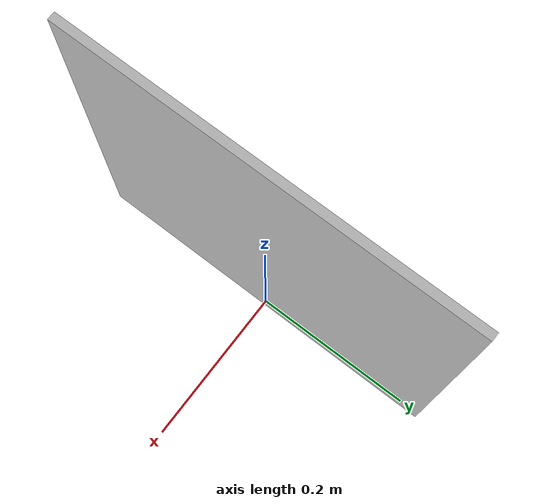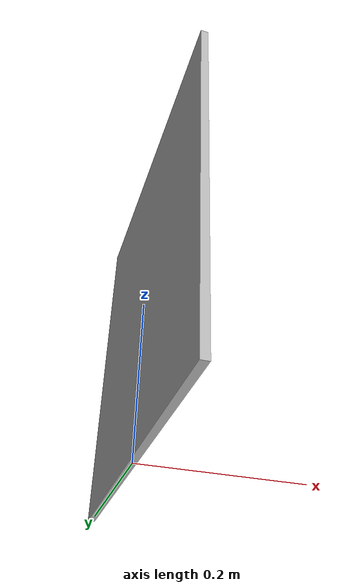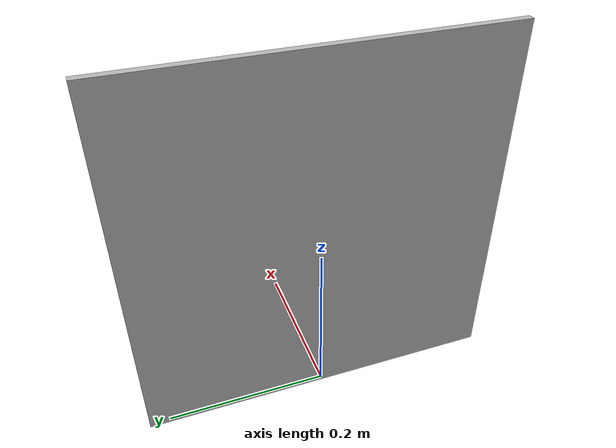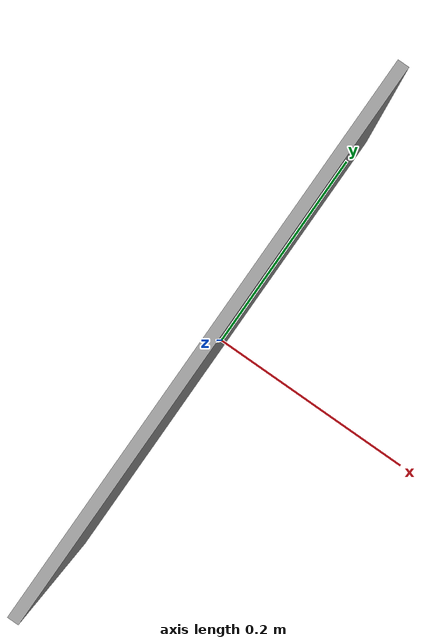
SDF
<?xml version="1.0" ?><sdf version="1.6">
  <model name="target_green">
    <static>true</static>
    <link name="link">
      <visual name="visual">
        <geometry>
          <mesh>
            <uri>model://target_green/meshes/target_green.dae</uri>
          <scale>0.9 0.9 0.9</scale></mesh>
        </geometry>
      </visual>
    </link>
  </model>
</sdf>
